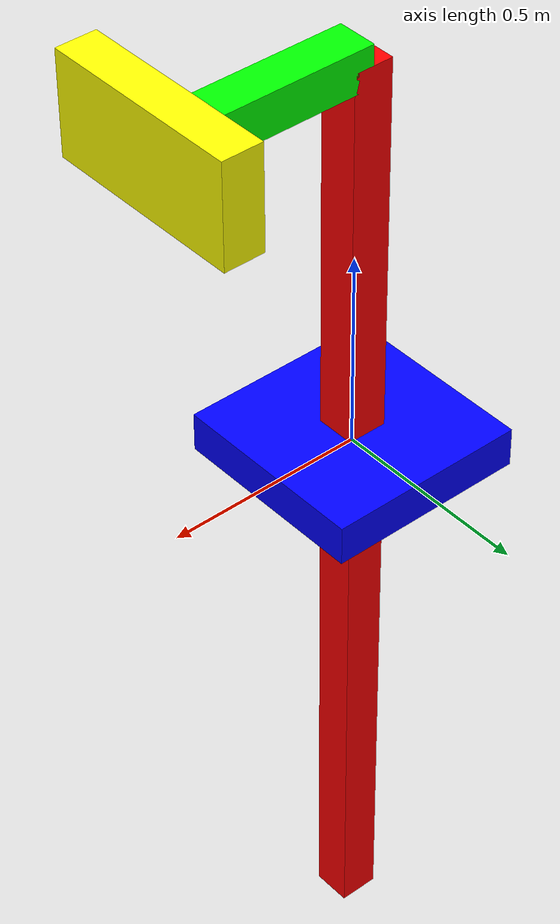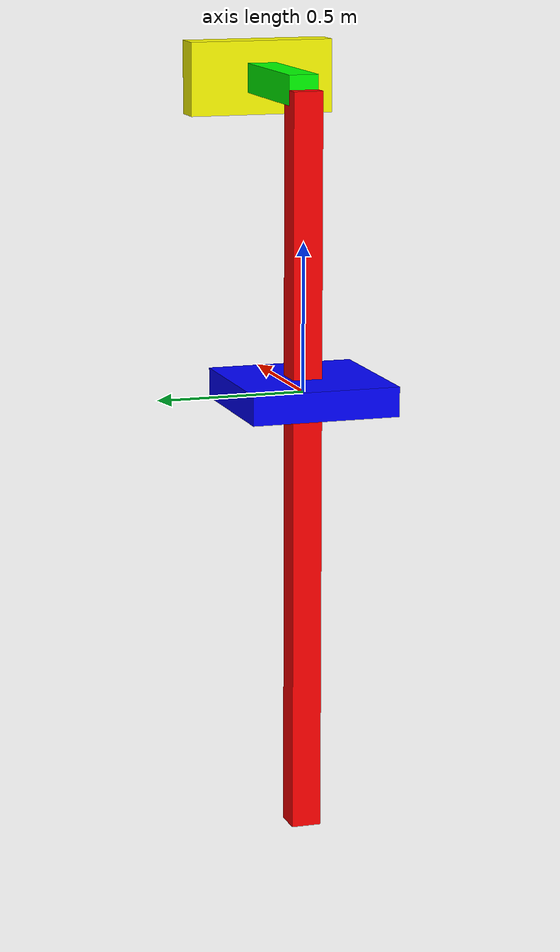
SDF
<sdf version='1.11'>
    <model name='observer'>
        <plugin name='dataset_generation::ObserverRobotController'
        filename='ObserverRobotController' />

        <pose>0 0 0 0 0 0</pose>

        <!-- Link for the base of the observer. The observer base is jointed to the world with two
        prismatic joints allowing XY motion -->
        <link name='observer_link'>
            <inertial>
                <mass>1</mass>
                <pose>0 0 0 0 0 0</pose>
            </inertial>
            <visual name='observer_base_visual'>
                <geometry>
                    <box>
                        <size>0.5 0.5 0.1</size>
                    </box>
                </geometry>
                <material>
                    <ambient>0 0 1 1</ambient>
                    <diffuse>0 0 1 1</diffuse>
                    <specular>1 1 1 1</specular>
                </material>
            </visual>
            <pose>0 0 0 0 0 0</pose>
        </link>
        <link name="x_slider_link" />
        <link name="z_rotator_link" />
        <joint name="world_x_slider" type="prismatic">
            <parent>world</parent>
            <child>x_slider_link</child>
            <axis>
                <xyz>1 0 0</xyz>
                <dynamics>
                    <damping>3.0</damping>
                    <friction>0.1</friction>
                </dynamics>
            </axis>
        </joint>
        <joint name="world_y_slider" type="prismatic">
            <parent>x_slider_link</parent>
            <child>z_rotator_link</child>
            <axis>
                <xyz>0 1 0</xyz>
                <dynamics>
                    <damping>3.0</damping>
                    <friction>0.1</friction>
                </dynamics>
            </axis>
        </joint>
        <joint name="z_rotator" type="revolute">
            <parent>z_rotator_link</parent>
            <child>observer_link</child>
            <axis>
                <xyz>0 0 1</xyz>
                <dynamics>
                    <damping>3.0</damping>
                    <friction>0.1</friction>
                </dynamics>
            </axis>
        </joint>

        <!-- The Z slider moves the base_link up and down -->
        <link name='z_slider_link'>
            <gravity>false</gravity>
            <visual name='z_slider_visual'>
                <geometry>
                    <box>
                        <size>0.1 0.1 2.5</size>
                    </box>
                </geometry>
                <material>
                    <ambient>1 0 0 1</ambient>
                    <diffuse>1 0 0 1</diffuse>
                    <specular>1 1 1 1</specular>
                </material>
            </visual>
            <pose>0 0 -0.25 0 0 0</pose>
        </link>
        <joint name="z_slider_joint" type="prismatic">
            <parent>observer_link</parent>
            <child>z_slider_link</child>
            <axis>
                <xyz>0 0 1</xyz>
                <limit>
                    <lower>-1</lower>
                    <upper>2.5</upper>
                </limit>
                <dynamics>
                    <damping>10.0</damping>
                    <friction>0.1</friction>
                </dynamics>
            </axis>
        </joint>

        <!-- The z_boom link extends forward from the top of the z_slider,
        this makes it more difficult to do pure rotations, which SLAM systems can struggle with. -->
        <link name='z_boom_link'>
            <gravity>false</gravity>
            <visual name='z_boom_visual'>
                <geometry>
                    <box>
                        <size>0.5 0.1 0.1</size>
                    </box>
                </geometry>
                <material>
                    <ambient>0 1 0 1</ambient>
                    <diffuse>0 1 0 1</diffuse>
                    <specular>1 1 1 1</specular>
                </material>
            </visual>
            <pose>0.25 0 1 0 0 0</pose>
        </link>
        <joint name="z_boom_joint" type="fixed">
            <parent>z_slider_link</parent>
            <child>z_boom_link</child>
        </joint>

        <!-- The base link is where all data is collected. It contains the IMU, 3 cameras (stereo
        and segmentation), and is where ground truth is recorded. -->
        <link name="base_link">
            <gravity>false</gravity>
            <visual name='base_visual'>
                <geometry>
                    <box>
                        <size>0.1 0.5 0.25</size>
                    </box>
                </geometry>
                <material>
                    <ambient>1 1 0 1</ambient>
                    <diffuse>1 1 0 1</diffuse>
                    <specular>1 1 1 1</specular>
                </material>
            </visual>
            <pose>0.5 0 1 0 0 0</pose>
            <sensor name='observer_camera' type='camera'>
                <topic>observer/left</topic>
                <camera>
                    <camera_info_topic>observer/left_info</camera_info_topic>

                    <horizontal_fov>1.047</horizontal_fov>
                    <image>
                        <width>1280</width>
                        <height>800</height>
                    </image>
                    <clip>
                        <near>0.1</near>
                        <far>100</far>
                    </clip>
                </camera>
                <always_on>1</always_on>
                <update_rate>30</update_rate>
                <visualize>true</visualize>
                <pose>0 -0.0375 0 0 0 0</pose>
            </sensor>
            <sensor name='observer_camera_right' type='camera'>
                <topic>observer/right</topic>
                <camera>
                    <horizontal_fov>0.6</horizontal_fov>
                    <image>
                        <width>1280</width>
                        <height>800</height>
                    </image>
                    <clip>
                        <near>0.1</near>
                        <far>100</far>
                    </clip>
                </camera>
                <always_on>1</always_on>
                <update_rate>30</update_rate>
                <visualize>true</visualize>
                <pose>0 0.0375 0 0 0 0</pose>
            </sensor>
            <sensor name="observer_imu_sensor" type="imu">
                <always_on>1</always_on>
                <update_rate>200</update_rate>
                <visualize>false</visualize>
                <topic>observer/imu</topic>
            </sensor>
        </link>
        <joint name="base_joint" type="fixed">
            <parent>z_boom_link</parent>
            <child>base_link</child>
        </joint>

        <static>false</static>
        <self_collide>false</self_collide>

    </model>
</sdf>
